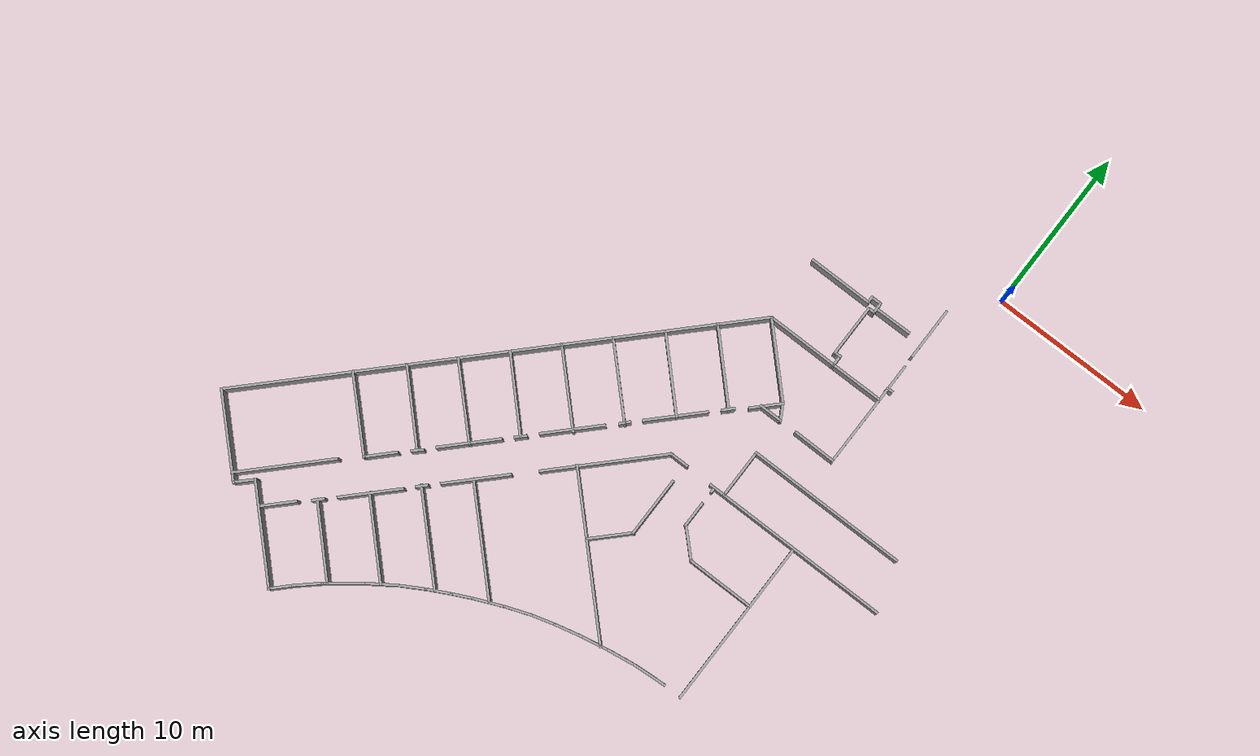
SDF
<sdf version="1.7">
 <model name="TI_1">
  <pose>-0.810812 4.85868 0 0 -0 0</pose>
  <link name="Wall_401">
   <collision name="Wall_401_Collision">
    <geometry><box><size>4 0.15 2.5</size></box></geometry>
    <pose>0 0 1.25 0 -0 0</pose>
   </collision>
   <visual name="Wall_401_Visual">
    <pose>0 0 1.25 0 -0 0</pose>
    <geometry><box><size>4 0.15 2.5</size></box></geometry>
    <material>
     <script><uri>file://media/materials/scripts/gazebo.material</uri><name>Gazebo/Grey</name></script>
     <ambient>1 1 1 1</ambient>
    </material>
    <meta><layer>0</layer></meta>
   </visual>
   <pose>-6.98592 -9.68957 0 0 -0 0</pose>
  </link>
  <link name="Wall_402">
   <collision name="Wall_402_Collision">
    <geometry><box><size>0.5 0.15 2.5</size></box></geometry>
    <pose>0 0 1.25 0 -0 0</pose>
   </collision>
   <visual name="Wall_402_Visual">
    <pose>0 0 1.25 0 -0 0</pose>
    <geometry><box><size>0.5 0.15 2.5</size></box></geometry>
    <material>
     <script><uri>file://media/materials/scripts/gazebo.material</uri><name>Gazebo/Grey</name></script>
     <ambient>1 1 1 1</ambient>
    </material>
    <meta><layer>0</layer></meta>
   </visual>
   <pose>-5.06092 -9.51457 0 0 -0 1.5708</pose>
  </link>
  <link name="Wall_403">
   <collision name="Wall_403_Collision">
    <geometry><box><size>0.75 0.15 2.5</size></box></geometry>
    <pose>0 0 1.25 0 -0 0</pose>
   </collision>
   <visual name="Wall_403_Visual">
    <pose>0 0 1.25 0 -0 0</pose>
    <geometry><box><size>0.75 0.15 2.5</size></box></geometry>
    <material>
     <script><uri>file://media/materials/scripts/gazebo.material</uri><name>Gazebo/Grey</name></script>
     <ambient>1 1 1 1</ambient>
    </material>
    <meta><layer>0</layer></meta>
   </visual>
   <pose>-4.76092 -9.33957 0 0 -0 0</pose>
  </link>
  <link name="Wall_404">
   <collision name="Wall_404_Collision">
    <geometry><box><size>0.75 0.15 2.5</size></box></geometry>
    <pose>0 0 1.25 0 -0 0</pose>
   </collision>
   <visual name="Wall_404_Visual">
    <pose>0 0 1.25 0 -0 0</pose>
    <geometry><box><size>0.75 0.15 2.5</size></box></geometry>
    <material>
     <script><uri>file://media/materials/scripts/gazebo.material</uri><name>Gazebo/Grey</name></script>
     <ambient>1 1 1 1</ambient>
    </material>
    <meta><layer>0</layer></meta>
   </visual>
   <pose>-4.46092 -9.63957 0 0 -0 -1.5708</pose>
  </link>
  <link name="Wall_405">
   <collision name="Wall_405_Collision">
    <geometry><box><size>0.5 0.15 2.5</size></box></geometry>
    <pose>0 0 1.25 0 -0 0</pose>
   </collision>
   <visual name="Wall_405_Visual">
    <pose>0 0 1.25 0 -0 0</pose>
    <geometry><box><size>0.5 0.15 2.5</size></box></geometry>
    <material>
     <script><uri>file://media/materials/scripts/gazebo.material</uri><name>Gazebo/Grey</name></script>
     <ambient>1 1 1 1</ambient>
    </material>
    <meta><layer>0</layer></meta>
   </visual>
   <pose>-4.63592 -9.93957 0 0 -0 3.14159</pose>
  </link>
  <link name="Wall_408">
   <collision name="Wall_408_Collision">
    <geometry><box><size>2.34167 0.15 2.5</size></box></geometry>
    <pose>0 0 1.25 0 -0 0</pose>
   </collision>
   <visual name="Wall_408_Visual">
    <pose>0 0 1.25 0 -0 0</pose>
    <geometry><box><size>2.34167 0.15 2.5</size></box></geometry>
    <material>
     <script><uri>file://media/materials/scripts/gazebo.material</uri><name>Gazebo/Grey</name></script>
     <ambient>1 1 1 1</ambient>
    </material>
    <meta><layer>0</layer></meta>
   </visual>
   <pose>-3.33184 -9.6756 0 0 -0 -3.12808</pose>
  </link>
  <link name="Wall_421">
   <collision name="Wall_421_Collision">
    <geometry><box><size>3.25 0.15 2.5</size></box></geometry>
    <pose>0 0 1.25 0 -0 0</pose>
   </collision>
   <visual name="Wall_421_Visual">
    <pose>0 0 1.25 0 -0 0</pose>
    <geometry><box><size>3.25 0.15 2.5</size></box></geometry>
    <material>
     <script><uri>file://media/materials/scripts/gazebo.material</uri><name>Gazebo/Grey</name></script>
     <ambient>1 1 1 1</ambient>
    </material>
    <meta><layer>0</layer></meta>
   </visual>
   <pose>-1.27363 -9.01933 0 0 -0 -1.5708</pose>
  </link>
  <link name="Wall_432">
   <collision name="Wall_432_Collision">
    <geometry><box><size>3.25 0.15 2.5</size></box></geometry>
    <pose>0 0 1.25 0 -0 0</pose>
   </collision>
   <visual name="Wall_432_Visual">
    <pose>0 0 1.25 0 -0 0</pose>
    <geometry><box><size>3.25 0.15 2.5</size></box></geometry>
    <material>
     <script><uri>file://media/materials/scripts/gazebo.material</uri><name>Gazebo/Grey</name></script>
     <ambient>1 1 1 1</ambient>
    </material>
    <meta><layer>0</layer></meta>
   </visual>
   <pose>-4.81092 -11.4896 0 0 -0 -1.5708</pose>
  </link>
  <link name="Wall_433">
   <collision name="Wall_433_Collision">
    <geometry><box><size>0.5 0.15 2.5</size></box></geometry>
    <pose>0 0 1.25 0 -0 0</pose>
   </collision>
   <visual name="Wall_433_Visual">
    <pose>0 0 1.25 0 -0 0</pose>
    <geometry><box><size>0.5 0.15 2.5</size></box></geometry>
    <material>
     <script><uri>file://media/materials/scripts/gazebo.material</uri><name>Gazebo/Grey</name></script>
     <ambient>1 1 1 1</ambient>
    </material>
    <meta><layer>0</layer></meta>
   </visual>
   <pose>-4.63592 -13.0396 0 0 -0 0</pose>
  </link>
  <link name="Wall_434">
   <collision name="Wall_434_Collision">
    <geometry><box><size>0.75 0.15 2.5</size></box></geometry>
    <pose>0 0 1.25 0 -0 0</pose>
   </collision>
   <visual name="Wall_434_Visual">
    <pose>0 0 1.25 0 -0 0</pose>
    <geometry><box><size>0.75 0.15 2.5</size></box></geometry>
    <material>
     <script><uri>file://media/materials/scripts/gazebo.material</uri><name>Gazebo/Grey</name></script>
     <ambient>1 1 1 1</ambient>
    </material>
    <meta><layer>0</layer></meta>
   </visual>
   <pose>-4.46092 -13.3396 0 0 -0 -1.5708</pose>
  </link>
  <link name="Wall_435">
   <collision name="Wall_435_Collision">
    <geometry><box><size>3.36116 0.15 2.5</size></box></geometry>
    <pose>0 0 1.25 0 -0 0</pose>
   </collision>
   <visual name="Wall_435_Visual">
    <pose>0 0 1.25 0 -0 0</pose>
    <geometry><box><size>3.36116 0.15 2.5</size></box></geometry>
    <material>
     <script><uri>file://media/materials/scripts/gazebo.material</uri><name>Gazebo/Grey</name></script>
     <ambient>1 1 1 1</ambient>
    </material>
    <meta><layer>0</layer></meta>
   </visual>
   <pose>-2.85541 -13.6315 0 0 -0 0.005054</pose>
  </link>
  <link name="Wall_436">
   <collision name="Wall_436_Collision">
    <geometry><box><size>2.4394 0.15 2.5</size></box></geometry>
    <pose>0 0 1.25 0 -0 0</pose>
   </collision>
   <visual name="Wall_436_Visual">
    <pose>0 0 1.25 0 -0 0</pose>
    <geometry><box><size>2.4394 0.15 2.5</size></box></geometry>
    <material>
     <script><uri>file://media/materials/scripts/gazebo.material</uri><name>Gazebo/Grey</name></script>
     <ambient>1 1 1 1</ambient>
    </material>
    <meta><layer>0</layer></meta>
   </visual>
   <pose>-1.24991 -12.4786 0 0 -0 1.5708</pose>
  </link>
  <link name="Wall_438">
   <collision name="Wall_438_Collision">
    <geometry><box><size>0.445775 0.15 2.5</size></box></geometry>
    <pose>0 0 1.25 0 -0 0</pose>
   </collision>
   <visual name="Wall_438_Visual">
    <pose>0 0 1.25 0 -0 0</pose>
    <geometry><box><size>0.445775 0.15 2.5</size></box></geometry>
    <material>
     <script><uri>file://media/materials/scripts/gazebo.material</uri><name>Gazebo/Grey</name></script>
     <ambient>1 1 1 1</ambient>
    </material>
    <meta><layer>0</layer></meta>
   </visual>
   <pose>-1.13175 -12.8405 0 0 -0 0</pose>
  </link>
  <link name="Wall_457">
   <collision name="Wall_457_Collision">
    <geometry><box><size>4.43562 0.15 2.5</size></box></geometry>
    <pose>0 0 1.25 0 -0 0</pose>
   </collision>
   <visual name="Wall_457_Visual">
    <pose>0 0 1.25 0 -0 0</pose>
    <geometry><box><size>4.43562 0.15 2.5</size></box></geometry>
    <material>
     <script><uri>file://media/materials/scripts/gazebo.material</uri><name>Gazebo/Grey</name></script>
     <ambient>1 1 1 1</ambient>
    </material>
    <meta><layer>0</layer></meta>
   </visual>
   <pose>-1.25703 -15.7661 0 0 -0 -1.57412</pose>
  </link>
  <link name="Wall_458">
   <collision name="Wall_458_Collision">
    <geometry><box><size>2.71492 0.15 2.5</size></box></geometry>
    <pose>0 0 1.25 0 -0 0</pose>
   </collision>
   <visual name="Wall_458_Visual">
    <pose>0 0 1.25 0 -0 0</pose>
    <geometry><box><size>2.71492 0.15 2.5</size></box></geometry>
    <material>
     <script><uri>file://media/materials/scripts/gazebo.material</uri><name>Gazebo/Grey</name></script>
     <ambient>1 1 1 1</ambient>
    </material>
    <meta><layer>0</layer></meta>
   </visual>
   <pose>-2.54659 -17.9004 0 0 -0 3.13497</pose>
  </link>
  <link name="Wall_460">
   <collision name="Wall_460_Collision">
    <geometry><box><size>4.5 0.15 2.5</size></box></geometry>
    <pose>0 0 1.25 0 -0 0</pose>
   </collision>
   <visual name="Wall_460_Visual">
    <pose>0 0 1.25 0 -0 0</pose>
    <geometry><box><size>4.5 0.15 2.5</size></box></geometry>
    <material>
     <script><uri>file://media/materials/scripts/gazebo.material</uri><name>Gazebo/Grey</name></script>
     <ambient>1 1 1 1</ambient>
    </material>
    <meta><layer>0</layer></meta>
   </visual>
   <pose>-6.63592 -13.6396 0 0 -0 3.14159</pose>
  </link>
  <link name="Wall_461">
   <collision name="Wall_461_Collision">
    <geometry><box><size>5 0.15 2.5</size></box></geometry>
    <pose>0 0 1.25 0 -0 0</pose>
   </collision>
   <visual name="Wall_461_Visual">
    <pose>0 0 1.25 0 -0 0</pose>
    <geometry><box><size>5 0.15 2.5</size></box></geometry>
    <material>
     <script><uri>file://media/materials/scripts/gazebo.material</uri><name>Gazebo/Grey</name></script>
     <ambient>1 1 1 1</ambient>
    </material>
    <meta><layer>0</layer></meta>
   </visual>
   <pose>-7.09618 -15.3543 0 0 -0 -0.785398</pose>
  </link>
  <link name="Wall_462">
   <collision name="Wall_462_Collision">
    <geometry><box><size>2 0.15 2.5</size></box></geometry>
    <pose>0 0 1.25 0 -0 0</pose>
   </collision>
   <visual name="Wall_462_Visual">
    <pose>0 0 1.25 0 -0 0</pose>
    <geometry><box><size>2 0.15 2.5</size></box></geometry>
    <material>
     <script><uri>file://media/materials/scripts/gazebo.material</uri><name>Gazebo/Grey</name></script>
     <ambient>1 1 1 1</ambient>
    </material>
    <meta><layer>0</layer></meta>
   </visual>
   <pose>-6.03552 -17.7231 0 0 -0 -2.35619</pose>
  </link>
  <link name="Wall_464">
   <collision name="Wall_464_Collision">
    <geometry><box><size>1.5 0.15 2.5</size></box></geometry>
    <pose>0 0 1.25 0 -0 0</pose>
   </collision>
   <visual name="Wall_464_Visual">
    <pose>0 0 1.25 0 -0 0</pose>
    <geometry><box><size>1.5 0.15 2.5</size></box></geometry>
    <material>
     <script><uri>file://media/materials/scripts/gazebo.material</uri><name>Gazebo/Grey</name></script>
     <ambient>1 1 1 1</ambient>
    </material>
    <meta><layer>0</layer></meta>
   </visual>
   <pose>-5.5925 -17.9016 0 0 -0 3.14159</pose>
  </link>
  <link name="Wall_466">
   <collision name="Wall_466_Collision">
    <geometry><box><size>1.10308 0.15 2.5</size></box></geometry>
    <pose>0 0 1.25 0 -0 0</pose>
   </collision>
   <visual name="Wall_466_Visual">
    <pose>0 0 1.25 0 -0 0</pose>
    <geometry><box><size>1.10308 0.15 2.5</size></box></geometry>
    <material>
     <script><uri>file://media/materials/scripts/gazebo.material</uri><name>Gazebo/Grey</name></script>
     <ambient>1 1 1 1</ambient>
    </material>
    <meta><layer>0</layer></meta>
   </visual>
   <pose>-5.14948 -17.4853 0 0 -0 -1.06239</pose>
  </link>
  <link name="Wall_468">
   <collision name="Wall_468_Collision">
    <geometry><box><size>31 0.15 2.5</size></box></geometry>
    <pose>0 0 1.25 0 -0 0</pose>
   </collision>
   <visual name="Wall_468_Visual">
    <pose>0 0 1.25 0 -0 0</pose>
    <geometry><box><size>31 0.15 2.5</size></box></geometry>
    <material>
     <script><uri>file://media/materials/scripts/gazebo.material</uri><name>Gazebo/Grey</name></script>
     <ambient>1 1 1 1</ambient>
    </material>
    <meta><layer>0</layer></meta>
   </visual>
   <pose>-19.718 -24.5467 0 0 -0 -2.35619</pose>
  </link>
  <link name="Wall_471">
   <collision name="Wall_471_Collision">
    <geometry><box><size>5.38169 0.15 2.5</size></box></geometry>
    <pose>0 0 1.25 0 -0 0</pose>
   </collision>
   <visual name="Wall_471_Visual">
    <pose>0 0 1.25 0 -0 0</pose>
    <geometry><box><size>5.38169 0.15 2.5</size></box></geometry>
    <material>
     <script><uri>file://media/materials/scripts/gazebo.material</uri><name>Gazebo/Grey</name></script>
     <ambient>1 1 1 1</ambient>
    </material>
    <meta><layer>0</layer></meta>
   </visual>
   <pose>-28.7678 -37.2957 0 0 -0 -0.781213</pose>
  </link>
  <link name="Wall_472">
   <collision name="Wall_472_Collision">
    <geometry><box><size>1.37226 0.15 2.5</size></box></geometry>
    <pose>0 0 1.25 0 -0 0</pose>
   </collision>
   <visual name="Wall_472_Visual">
    <pose>0 0 1.25 0 -0 0</pose>
    <geometry><box><size>1.37226 0.15 2.5</size></box></geometry>
    <material>
     <script><uri>file://media/materials/scripts/gazebo.material</uri><name>Gazebo/Grey</name></script>
     <ambient>1 1 1 1</ambient>
    </material>
    <meta><layer>0</layer></meta>
   </visual>
   <pose>-26.4734 -38.7104 0 0 -0 0.774288</pose>
  </link>
  <link name="Wall_474">
   <collision name="Wall_474_Collision">
    <geometry><box><size>6.25 0.15 2.5</size></box></geometry>
    <pose>0 0 1.25 0 -0 0</pose>
   </collision>
   <visual name="Wall_474_Visual">
    <pose>0 0 1.25 0 -0 0</pose>
    <geometry><box><size>6.25 0.15 2.5</size></box></geometry>
    <material>
     <script><uri>file://media/materials/scripts/gazebo.material</uri><name>Gazebo/Grey</name></script>
     <ambient>1 1 1 1</ambient>
    </material>
    <meta><layer>0</layer></meta>
   </visual>
   <pose>-23.8799 -40.4397 0 0 -0 -0.785398</pose>
  </link>
  <link name="Wall_475">
   <collision name="Wall_475_Collision">
    <geometry><box><size>1.5 0.15 2.5</size></box></geometry>
    <pose>0 0 1.25 0 -0 0</pose>
   </collision>
   <visual name="Wall_475_Visual">
    <pose>0 0 1.25 0 -0 0</pose>
    <geometry><box><size>1.5 0.15 2.5</size></box></geometry>
    <material>
     <script><uri>file://media/materials/scripts/gazebo.material</uri><name>Gazebo/Grey</name></script>
     <ambient>1 1 1 1</ambient>
    </material>
    <meta><layer>0</layer></meta>
   </visual>
   <pose>-21.2459 -42.1191 0 0 -0 0.785398</pose>
  </link>
  <link name="Wall_476">
   <collision name="Wall_476_Collision">
    <geometry><box><size>1.78687 0.15 2.5</size></box></geometry>
    <pose>0 0 1.25 0 -0 0</pose>
   </collision>
   <visual name="Wall_476_Visual">
    <pose>0 0 1.25 0 -0 0</pose>
    <geometry><box><size>1.78687 0.15 2.5</size></box></geometry>
    <material>
     <script><uri>file://media/materials/scripts/gazebo.material</uri><name>Gazebo/Grey</name></script>
     <ambient>1 1 1 1</ambient>
    </material>
    <meta><layer>0</layer></meta>
   </visual>
   <pose>-20.1601 -41.0945 0 0 -0 0.732505</pose>
  </link>
  <link name="Wall_477">
   <collision name="Wall_477_Collision">
    <geometry><box><size>2.57816 0.15 2.5</size></box></geometry>
    <pose>0 0 1.25 0 -0 0</pose>
   </collision>
   <visual name="Wall_477_Visual">
    <pose>0 0 1.25 0 -0 0</pose>
    <geometry><box><size>2.57816 0.15 2.5</size></box></geometry>
    <material>
     <script><uri>file://media/materials/scripts/gazebo.material</uri><name>Gazebo/Grey</name></script>
     <ambient>1 1 1 1</ambient>
    </material>
    <meta><layer>0</layer></meta>
   </visual>
   <pose>-18.5864 -39.8106 0 0 -0 0.651869</pose>
  </link>
  <link name="Wall_478">
   <collision name="Wall_478_Collision">
    <geometry><box><size>1.88648 0.15 2.5</size></box></geometry>
    <pose>0 0 1.25 0 -0 0</pose>
   </collision>
   <visual name="Wall_478_Visual">
    <pose>0 0 1.25 0 -0 0</pose>
    <geometry><box><size>1.88648 0.15 2.5</size></box></geometry>
    <material>
     <script><uri>file://media/materials/scripts/gazebo.material</uri><name>Gazebo/Grey</name></script>
     <ambient>1 1 1 1</ambient>
    </material>
    <meta><layer>0</layer></meta>
   </visual>
   <pose>-16.9038 -38.5852 0 0 -0 0.598144</pose>
  </link>
  <link name="Wall_479">
   <collision name="Wall_479_Collision">
    <geometry><box><size>1.73143 0.15 2.5</size></box></geometry>
    <pose>0 0 1.25 0 -0 0</pose>
   </collision>
   <visual name="Wall_479_Visual">
    <pose>0 0 1.25 0 -0 0</pose>
    <geometry><box><size>1.73143 0.15 2.5</size></box></geometry>
    <material>
     <script><uri>file://media/materials/scripts/gazebo.material</uri><name>Gazebo/Grey</name></script>
     <ambient>1 1 1 1</ambient>
    </material>
    <meta><layer>0</layer></meta>
   </visual>
   <pose>-15.5006 -37.7026 0 0 -0 0.521138</pose>
  </link>
  <link name="Wall_480">
   <collision name="Wall_480_Collision">
    <geometry><box><size>1.59262 0.15 2.5</size></box></geometry>
    <pose>0 0 1.25 0 -0 0</pose>
   </collision>
   <visual name="Wall_480_Visual">
    <pose>0 0 1.25 0 -0 0</pose>
    <geometry><box><size>1.59262 0.15 2.5</size></box></geometry>
    <material>
     <script><uri>file://media/materials/scripts/gazebo.material</uri><name>Gazebo/Grey</name></script>
     <ambient>1 1 1 1</ambient>
    </material>
    <meta><layer>0</layer></meta>
   </visual>
   <pose>-14.1735 -36.9787 0 0 -0 0.475458</pose>
  </link>
  <link name="Wall_482">
   <collision name="Wall_482_Collision">
    <geometry><box><size>1.3315 0.15 2.5</size></box></geometry>
    <pose>0 0 1.25 0 -0 0</pose>
   </collision>
   <visual name="Wall_482_Visual">
    <pose>0 0 1.25 0 -0 0</pose>
    <geometry><box><size>1.3315 0.15 2.5</size></box></geometry>
    <material>
     <script><uri>file://media/materials/scripts/gazebo.material</uri><name>Gazebo/Grey</name></script>
     <ambient>1 1 1 1</ambient>
    </material>
    <meta><layer>0</layer></meta>
   </visual>
   <pose>-12.9988 -36.3946 0 0 -0 0.444419</pose>
  </link>
  <link name="Wall_483">
   <collision name="Wall_483_Collision">
    <geometry><box><size>1.98756 0.15 2.5</size></box></geometry>
    <pose>0 0 1.25 0 -0 0</pose>
   </collision>
   <visual name="Wall_483_Visual">
    <pose>0 0 1.25 0 -0 0</pose>
    <geometry><box><size>1.98756 0.15 2.5</size></box></geometry>
    <material>
     <script><uri>file://media/materials/scripts/gazebo.material</uri><name>Gazebo/Grey</name></script>
     <ambient>1 1 1 1</ambient>
    </material>
    <meta><layer>0</layer></meta>
   </visual>
   <pose>-11.621 -35.7787 0 0 -0 0.404892</pose>
  </link>
  <link name="Wall_484">
   <collision name="Wall_484_Collision">
    <geometry><box><size>1.70475 0.15 2.5</size></box></geometry>
    <pose>0 0 1.25 0 -0 0</pose>
   </collision>
   <visual name="Wall_484_Visual">
    <pose>0 0 1.25 0 -0 0</pose>
    <geometry><box><size>1.70475 0.15 2.5</size></box></geometry>
    <material>
     <script><uri>file://media/materials/scripts/gazebo.material</uri><name>Gazebo/Grey</name></script>
     <ambient>1 1 1 1</ambient>
    </material>
    <meta><layer>0</layer></meta>
   </visual>
   <pose>-10.0463 -35.1501 0 0 -0 0.350167</pose>
  </link>
  <link name="Wall_485">
   <collision name="Wall_485_Collision">
    <geometry><box><size>1.5891 0.15 2.5</size></box></geometry>
    <pose>0 0 1.25 0 -0 0</pose>
   </collision>
   <visual name="Wall_485_Visual">
    <pose>0 0 1.25 0 -0 0</pose>
    <geometry><box><size>1.5891 0.15 2.5</size></box></geometry>
    <material>
     <script><uri>file://media/materials/scripts/gazebo.material</uri><name>Gazebo/Grey</name></script>
     <ambient>1 1 1 1</ambient>
    </material>
    <meta><layer>0</layer></meta>
   </visual>
   <pose>-8.62399 -34.6865 0 0 -0 0.277088</pose>
  </link>
  <link name="Wall_486">
   <collision name="Wall_486_Collision">
    <geometry><box><size>1.74246 0.15 2.5</size></box></geometry>
    <pose>0 0 1.25 0 -0 0</pose>
   </collision>
   <visual name="Wall_486_Visual">
    <pose>0 0 1.25 0 -0 0</pose>
    <geometry><box><size>1.74246 0.15 2.5</size></box></geometry>
    <material>
     <script><uri>file://media/materials/scripts/gazebo.material</uri><name>Gazebo/Grey</name></script>
     <ambient>1 1 1 1</ambient>
    </material>
    <meta><layer>0</layer></meta>
   </visual>
   <pose>-7.15724 -34.3056 0 0 -0 0.233374</pose>
  </link>
  <link name="Wall_487">
   <collision name="Wall_487_Collision">
    <geometry><box><size>1.82878 0.15 2.5</size></box></geometry>
    <pose>0 0 1.25 0 -0 0</pose>
   </collision>
   <visual name="Wall_487_Visual">
    <pose>0 0 1.25 0 -0 0</pose>
    <geometry><box><size>1.82878 0.15 2.5</size></box></geometry>
    <material>
     <script><uri>file://media/materials/scripts/gazebo.material</uri><name>Gazebo/Grey</name></script>
     <ambient>1 1 1 1</ambient>
    </material>
    <meta><layer>0</layer></meta>
   </visual>
   <pose>-5.55716 -33.969 0 0 -0 0.18256</pose>
  </link>
  <link name="Wall_488">
   <collision name="Wall_488_Collision">
    <geometry><box><size>1.83099 0.15 2.5</size></box></geometry>
    <pose>0 0 1.25 0 -0 0</pose>
   </collision>
   <visual name="Wall_488_Visual">
    <pose>0 0 1.25 0 -0 0</pose>
    <geometry><box><size>1.83099 0.15 2.5</size></box></geometry>
    <material>
     <script><uri>file://media/materials/scripts/gazebo.material</uri><name>Gazebo/Grey</name></script>
     <ambient>1 1 1 1</ambient>
    </material>
    <meta><layer>0</layer></meta>
   </visual>
   <pose>-3.89992 -33.696 0 0 -0 0.144034</pose>
  </link>
  <link name="Wall_489">
   <collision name="Wall_489_Collision">
    <geometry><box><size>2.12245 0.15 2.5</size></box></geometry>
    <pose>0 0 1.25 0 -0 0</pose>
   </collision>
   <visual name="Wall_489_Visual">
    <pose>0 0 1.25 0 -0 0</pose>
    <geometry><box><size>2.12245 0.15 2.5</size></box></geometry>
    <material>
     <script><uri>file://media/materials/scripts/gazebo.material</uri><name>Gazebo/Grey</name></script>
     <ambient>1 1 1 1</ambient>
    </material>
    <meta><layer>0</layer></meta>
   </visual>
   <pose>-2.08395 -33.5119 0 0 -0 0.064427</pose>
  </link>
  <link name="Wall_582">
   <collision name="Wall_582_Collision">
    <geometry><box><size>11.75 0.15 2.5</size></box></geometry>
    <pose>0 0 1.25 0 -0 0</pose>
   </collision>
   <visual name="Wall_582_Visual">
    <pose>0 0 1.25 0 -0 0</pose>
    <geometry><box><size>11.75 0.15 2.5</size></box></geometry>
    <material>
     <script><uri>file://media/materials/scripts/gazebo.material</uri><name>Gazebo/Grey</name></script>
     <ambient>1 1 1 1</ambient>
    </material>
    <meta><layer>0</layer></meta>
   </visual>
   <pose>0.000773 -23.1005 0 0 -0 3.14159</pose>
  </link>
  <link name="Wall_584">
   <collision name="Wall_584_Collision">
    <geometry><box><size>3.09219 0.15 2.5</size></box></geometry>
    <pose>0 0 1.25 0 -0 0</pose>
   </collision>
   <visual name="Wall_584_Visual">
    <pose>0 0 1.25 0 -0 0</pose>
    <geometry><box><size>3.09219 0.15 2.5</size></box></geometry>
    <material>
     <script><uri>file://media/materials/scripts/gazebo.material</uri><name>Gazebo/Grey</name></script>
     <ambient>1 1 1 1</ambient>
    </material>
    <meta><layer>0</layer></meta>
   </visual>
   <pose>-4.88201 -21.6168 0 0 -0 1.5708</pose>
  </link>
  <link name="Wall_585">
   <collision name="Wall_585_Collision">
    <geometry><box><size>9.94887 0.15 2.5</size></box></geometry>
    <pose>0 0 1.25 0 -0 0</pose>
   </collision>
   <visual name="Wall_585_Visual">
    <pose>0 0 1.25 0 -0 0</pose>
    <geometry><box><size>9.94887 0.15 2.5</size></box></geometry>
    <material>
     <script><uri>file://media/materials/scripts/gazebo.material</uri><name>Gazebo/Grey</name></script>
     <ambient>1 1 1 1</ambient>
    </material>
    <meta><layer>0</layer></meta>
   </visual>
   <pose>0.017421 -20.1457 0 0 -0 0</pose>
  </link>
  <link name="Wall_589">
   <collision name="Wall_589_Collision">
    <geometry><box><size>0.44043 0.15 2.5</size></box></geometry>
    <pose>0 0 1.25 0 -0 0</pose>
   </collision>
   <visual name="Wall_589_Visual">
    <pose>0 0 1.25 0 -0 0</pose>
    <geometry><box><size>0.44043 0.15 2.5</size></box></geometry>
    <material>
     <script><uri>file://media/materials/scripts/gazebo.material</uri><name>Gazebo/Grey</name></script>
     <ambient>1 1 1 1</ambient>
    </material>
    <meta><layer>0</layer></meta>
   </visual>
   <pose>-5.54495 -23.2331 0 0 -0 1.61425</pose>
  </link>
  <link name="Wall_591">
   <collision name="Wall_591_Collision">
    <geometry><box><size>1.64009 0.15 2.5</size></box></geometry>
    <pose>0 0 1.25 0 -0 0</pose>
   </collision>
   <visual name="Wall_591_Visual">
    <pose>0 0 1.25 0 -0 0</pose>
    <geometry><box><size>1.64009 0.15 2.5</size></box></geometry>
    <material>
     <script><uri>file://media/materials/scripts/gazebo.material</uri><name>Gazebo/Grey</name></script>
     <ambient>1 1 1 1</ambient>
    </material>
    <meta><layer>0</layer></meta>
   </visual>
   <pose>-5.55126 -24.9568 0 0 -0 -1.5708</pose>
  </link>
  <link name="Wall_592">
   <collision name="Wall_592_Collision">
    <geometry><box><size>2.15919 0.15 2.5</size></box></geometry>
    <pose>0 0 1.25 0 -0 0</pose>
   </collision>
   <visual name="Wall_592_Visual">
    <pose>0 0 1.25 0 -0 0</pose>
    <geometry><box><size>2.15919 0.15 2.5</size></box></geometry>
    <material>
     <script><uri>file://media/materials/scripts/gazebo.material</uri><name>Gazebo/Grey</name></script>
     <ambient>1 1 1 1</ambient>
    </material>
    <meta><layer>0</layer></meta>
   </visual>
   <pose>-4.8315 -26.4026 0 0 -0 -0.772066</pose>
  </link>
  <link name="Wall_593">
   <collision name="Wall_593_Collision">
    <geometry><box><size>4.27916 0.15 2.5</size></box></geometry>
    <pose>0 0 1.25 0 -0 0</pose>
   </collision>
   <visual name="Wall_593_Visual">
    <pose>0 0 1.25 0 -0 0</pose>
    <geometry><box><size>4.27916 0.15 2.5</size></box></geometry>
    <material>
     <script><uri>file://media/materials/scripts/gazebo.material</uri><name>Gazebo/Grey</name></script>
     <ambient>1 1 1 1</ambient>
    </material>
    <meta><layer>0</layer></meta>
   </visual>
   <pose>-2.04716 -27.1098 0 0 -0 -0.003058</pose>
  </link>
  <link name="Wall_594">
   <collision name="Wall_594_Collision">
    <geometry><box><size>4.12771 0.15 2.5</size></box></geometry>
    <pose>0 0 1.25 0 -0 0</pose>
   </collision>
   <visual name="Wall_594_Visual">
    <pose>0 0 1.25 0 -0 0</pose>
    <geometry><box><size>4.12771 0.15 2.5</size></box></geometry>
    <material>
     <script><uri>file://media/materials/scripts/gazebo.material</uri><name>Gazebo/Grey</name></script>
     <ambient>1 1 1 1</ambient>
    </material>
    <meta><layer>0</layer></meta>
   </visual>
   <pose>0.017421 -25.1272 0 0 -0 1.5708</pose>
  </link>
  <link name="Wall_596">
   <collision name="Wall_596_Collision">
    <geometry><box><size>6.5 0.15 2.5</size></box></geometry>
    <pose>0 0 1.25 0 -0 0</pose>
   </collision>
   <visual name="Wall_596_Visual">
    <pose>0 0 1.25 0 -0 0</pose>
    <geometry><box><size>6.5 0.15 2.5</size></box></geometry>
    <material>
     <script><uri>file://media/materials/scripts/gazebo.material</uri><name>Gazebo/Grey</name></script>
     <ambient>1 1 1 1</ambient>
    </material>
    <meta><layer>0</layer></meta>
   </visual>
   <pose>0.017421 -30.2911 0 0 -0 -1.5708</pose>
  </link>
  <link name="Wall_598">
   <collision name="Wall_598_Collision">
    <geometry><box><size>4.94431 0.15 2.5</size></box></geometry>
    <pose>0 0 1.25 0 -0 0</pose>
   </collision>
   <visual name="Wall_598_Visual">
    <pose>0 0 1.25 0 -0 0</pose>
    <geometry><box><size>4.94431 0.15 2.5</size></box></geometry>
    <material>
     <script><uri>file://media/materials/scripts/gazebo.material</uri><name>Gazebo/Grey</name></script>
     <ambient>1 1 1 1</ambient>
    </material>
    <meta><layer>0</layer></meta>
   </visual>
   <pose>-9.26173 -17.4674 0 0 -0 -0.790324</pose>
  </link>
  <link name="Wall_600">
   <collision name="Wall_600_Collision">
    <geometry><box><size>0.799575 0.15 2.5</size></box></geometry>
    <pose>0 0 1.25 0 -0 0</pose>
   </collision>
   <visual name="Wall_600_Visual">
    <pose>0 0 1.25 0 -0 0</pose>
    <geometry><box><size>0.799575 0.15 2.5</size></box></geometry>
    <material>
     <script><uri>file://media/materials/scripts/gazebo.material</uri><name>Gazebo/Grey</name></script>
     <ambient>1 1 1 1</ambient>
    </material>
    <meta><layer>0</layer></meta>
   </visual>
   <pose>-7.60011 -19.1708 0 0 -0 -2.33801</pose>
  </link>
  <link name="Wall_602">
   <collision name="Wall_602_Collision">
    <geometry><box><size>3.75 0.15 2.5</size></box></geometry>
    <pose>0 0 1.25 0 -0 0</pose>
   </collision>
   <visual name="Wall_602_Visual">
    <pose>0 0 1.25 0 -0 0</pose>
    <geometry><box><size>3.75 0.15 2.5</size></box></geometry>
    <material>
     <script><uri>file://media/materials/scripts/gazebo.material</uri><name>Gazebo/Grey</name></script>
     <ambient>1 1 1 1</ambient>
    </material>
    <meta><layer>0</layer></meta>
   </visual>
   <pose>-9.6861 -21.2575 0 0 -0 -2.35619</pose>
  </link>
  <link name="Wall_604">
   <collision name="Wall_604_Collision">
    <geometry><box><size>4.90422 0.15 2.5</size></box></geometry>
    <pose>0 0 1.25 0 -0 0</pose>
   </collision>
   <visual name="Wall_604_Visual">
    <pose>0 0 1.25 0 -0 0</pose>
    <geometry><box><size>4.90422 0.15 2.5</size></box></geometry>
    <material>
     <script><uri>file://media/materials/scripts/gazebo.material</uri><name>Gazebo/Grey</name></script>
     <ambient>1 1 1 1</ambient>
    </material>
    <meta><layer>0</layer></meta>
   </visual>
   <pose>-11.3249 -19.5491 0 0 -0 -0.787558</pose>
  </link>
  <link name="Wall_606">
   <collision name="Wall_606_Collision">
    <geometry><box><size>4.94529 0.15 2.5</size></box></geometry>
    <pose>0 0 1.25 0 -0 0</pose>
   </collision>
   <visual name="Wall_606_Visual">
    <pose>0 0 1.25 0 -0 0</pose>
    <geometry><box><size>4.94529 0.15 2.5</size></box></geometry>
    <material>
     <script><uri>file://media/materials/scripts/gazebo.material</uri><name>Gazebo/Grey</name></script>
     <ambient>1 1 1 1</ambient>
    </material>
    <meta><layer>0</layer></meta>
   </visual>
   <pose>-13.3942 -21.6184 0 0 -0 -0.783257</pose>
  </link>
  <link name="Wall_608">
   <collision name="Wall_608_Collision">
    <geometry><box><size>0.725389 0.15 2.5</size></box></geometry>
    <pose>0 0 1.25 0 -0 0</pose>
   </collision>
   <visual name="Wall_608_Visual">
    <pose>0 0 1.25 0 -0 0</pose>
    <geometry><box><size>0.725389 0.15 2.5</size></box></geometry>
    <material>
     <script><uri>file://media/materials/scripts/gazebo.material</uri><name>Gazebo/Grey</name></script>
     <ambient>1 1 1 1</ambient>
    </material>
    <meta><layer>0</layer></meta>
   </visual>
   <pose>-11.7024 -23.2738 0 0 -0 -2.3205</pose>
  </link>
  <link name="Wall_610">
   <collision name="Wall_610_Collision">
    <geometry><box><size>5 0.15 2.5</size></box></geometry>
    <pose>0 0 1.25 0 -0 0</pose>
   </collision>
   <visual name="Wall_610_Visual">
    <pose>0 0 1.25 0 -0 0</pose>
    <geometry><box><size>5 0.15 2.5</size></box></geometry>
    <material>
     <script><uri>file://media/materials/scripts/gazebo.material</uri><name>Gazebo/Grey</name></script>
     <ambient>1 1 1 1</ambient>
    </material>
    <meta><layer>0</layer></meta>
   </visual>
   <pose>-15.426 -23.6744 0 0 -0 -0.785398</pose>
  </link>
  <link name="Wall_612">
   <collision name="Wall_612_Collision">
    <geometry><box><size>3.75 0.15 2.5</size></box></geometry>
    <pose>0 0 1.25 0 -0 0</pose>
   </collision>
   <visual name="Wall_612_Visual">
    <pose>0 0 1.25 0 -0 0</pose>
    <geometry><box><size>3.75 0.15 2.5</size></box></geometry>
    <material>
     <script><uri>file://media/materials/scripts/gazebo.material</uri><name>Gazebo/Grey</name></script>
     <ambient>1 1 1 1</ambient>
    </material>
    <meta><layer>0</layer></meta>
   </visual>
   <pose>-13.7812 -25.3381 0 0 -0 -2.35619</pose>
  </link>
  <link name="Wall_614">
   <collision name="Wall_614_Collision">
    <geometry><box><size>0.75 0.15 2.5</size></box></geometry>
    <pose>0 0 1.25 0 -0 0</pose>
   </collision>
   <visual name="Wall_614_Visual">
    <pose>0 0 1.25 0 -0 0</pose>
    <geometry><box><size>0.75 0.15 2.5</size></box></geometry>
    <material>
     <script><uri>file://media/materials/scripts/gazebo.material</uri><name>Gazebo/Grey</name></script>
     <ambient>1 1 1 1</ambient>
    </material>
    <meta><layer>0</layer></meta>
   </visual>
   <pose>-15.8281 -27.414 0 0 -0 -2.35619</pose>
  </link>
  <link name="Wall_616">
   <collision name="Wall_616_Collision">
    <geometry><box><size>4.89412 0.15 2.5</size></box></geometry>
    <pose>0 0 1.25 0 -0 0</pose>
   </collision>
   <visual name="Wall_616_Visual">
    <pose>0 0 1.25 0 -0 0</pose>
    <geometry><box><size>4.89412 0.15 2.5</size></box></geometry>
    <material>
     <script><uri>file://media/materials/scripts/gazebo.material</uri><name>Gazebo/Grey</name></script>
     <ambient>1 1 1 1</ambient>
    </material>
    <meta><layer>0</layer></meta>
   </visual>
   <pose>-17.511 -25.7135 0 0 -0 2.34754</pose>
  </link>
  <link name="Wall_618">
   <collision name="Wall_618_Collision">
    <geometry><box><size>3.75 0.15 2.5</size></box></geometry>
    <pose>0 0 1.25 0 -0 0</pose>
   </collision>
   <visual name="Wall_618_Visual">
    <pose>0 0 1.25 0 -0 0</pose>
    <geometry><box><size>3.75 0.15 2.5</size></box></geometry>
    <material>
     <script><uri>file://media/materials/scripts/gazebo.material</uri><name>Gazebo/Grey</name></script>
     <ambient>1 1 1 1</ambient>
    </material>
    <meta><layer>0</layer></meta>
   </visual>
   <pose>-17.8762 -29.4477 0 0 -0 -2.35619</pose>
  </link>
  <link name="Wall_620">
   <collision name="Wall_620_Collision">
    <geometry><box><size>4.94529 0.15 2.5</size></box></geometry>
    <pose>0 0 1.25 0 -0 0</pose>
   </collision>
   <visual name="Wall_620_Visual">
    <pose>0 0 1.25 0 -0 0</pose>
    <geometry><box><size>4.94529 0.15 2.5</size></box></geometry>
    <material>
     <script><uri>file://media/materials/scripts/gazebo.material</uri><name>Gazebo/Grey</name></script>
     <ambient>1 1 1 1</ambient>
    </material>
    <meta><layer>0</layer></meta>
   </visual>
   <pose>-19.5513 -27.761 0 0 -0 -0.783257</pose>
  </link>
  <link name="Wall_622">
   <collision name="Wall_622_Collision">
    <geometry><box><size>4.86323 0.15 2.5</size></box></geometry>
    <pose>0 0 1.25 0 -0 0</pose>
   </collision>
   <visual name="Wall_622_Visual">
    <pose>0 0 1.25 0 -0 0</pose>
    <geometry><box><size>4.86323 0.15 2.5</size></box></geometry>
    <material>
     <script><uri>file://media/materials/scripts/gazebo.material</uri><name>Gazebo/Grey</name></script>
     <ambient>1 1 1 1</ambient>
    </material>
    <meta><layer>0</layer></meta>
   </visual>
   <pose>-21.5988 -29.8085 0 0 -0 -0.791934</pose>
  </link>
  <link name="Wall_624">
   <collision name="Wall_624_Collision">
    <geometry><box><size>0.75661 0.15 2.5</size></box></geometry>
    <pose>0 0 1.25 0 -0 0</pose>
   </collision>
   <visual name="Wall_624_Visual">
    <pose>0 0 1.25 0 -0 0</pose>
    <geometry><box><size>0.75661 0.15 2.5</size></box></geometry>
    <material>
     <script><uri>file://media/materials/scripts/gazebo.material</uri><name>Gazebo/Grey</name></script>
     <ambient>1 1 1 1</ambient>
    </material>
    <meta><layer>0</layer></meta>
   </visual>
   <pose>-19.9071 -31.5148 0 0 -0 0.734594</pose>
  </link>
  <link name="Wall_626">
   <collision name="Wall_626_Collision">
    <geometry><box><size>1.98805 0.15 2.5</size></box></geometry>
    <pose>0 0 1.25 0 -0 0</pose>
   </collision>
   <visual name="Wall_626_Visual">
    <pose>0 0 1.25 0 -0 0</pose>
    <geometry><box><size>1.98805 0.15 2.5</size></box></geometry>
    <material>
     <script><uri>file://media/materials/scripts/gazebo.material</uri><name>Gazebo/Grey</name></script>
     <ambient>1 1 1 1</ambient>
    </material>
    <meta><layer>0</layer></meta>
   </visual>
   <pose>-21.3883 -32.9524 0 0 -0 -2.35061</pose>
  </link>
  <link name="Wall_627">
   <collision name="Wall_627_Collision">
    <geometry><box><size>4.93505 0.15 2.5</size></box></geometry>
    <pose>0 0 1.25 0 -0 0</pose>
   </collision>
   <visual name="Wall_627_Visual">
    <pose>0 0 1.25 0 -0 0</pose>
    <geometry><box><size>4.93505 0.15 2.5</size></box></geometry>
    <material>
     <script><uri>file://media/materials/scripts/gazebo.material</uri><name>Gazebo/Grey</name></script>
     <ambient>1 1 1 1</ambient>
    </material>
    <meta><layer>0</layer></meta>
   </visual>
   <pose>-23.7335 -31.9214 0 0 -0 2.36049</pose>
  </link>
  <link name="Wall_629">
   <collision name="Wall_629_Collision">
    <geometry><box><size>6 0.15 2.5</size></box></geometry>
    <pose>0 0 1.25 0 -0 0</pose>
   </collision>
   <visual name="Wall_629_Visual">
    <pose>0 0 1.25 0 -0 0</pose>
    <geometry><box><size>6 0.15 2.5</size></box></geometry>
    <material>
     <script><uri>file://media/materials/scripts/gazebo.material</uri><name>Gazebo/Grey</name></script>
     <ambient>1 1 1 1</ambient>
    </material>
    <meta><layer>0</layer></meta>
   </visual>
   <pose>-25.2209 -36.6762 0 0 -0 -2.35619</pose>
  </link>
  <link name="Wall_631">
   <collision name="Wall_631_Collision">
    <geometry><box><size>2.25 0.15 2.5</size></box></geometry>
    <pose>0 0 1.25 0 -0 0</pose>
   </collision>
   <visual name="Wall_631_Visual">
    <pose>0 0 1.25 0 -0 0</pose>
    <geometry><box><size>2.25 0.15 2.5</size></box></geometry>
    <material>
     <script><uri>file://media/materials/scripts/gazebo.material</uri><name>Gazebo/Grey</name></script>
     <ambient>1 1 1 1</ambient>
    </material>
    <meta><layer>0</layer></meta>
   </visual>
   <pose>-24.2399 -38.5994 0 0 -0 0.785398</pose>
  </link>
  <link name="Wall_633">
   <collision name="Wall_633_Collision">
    <geometry><box><size>0.75 0.15 2.5</size></box></geometry>
    <pose>0 0 1.25 0 -0 0</pose>
   </collision>
   <visual name="Wall_633_Visual">
    <pose>0 0 1.25 0 -0 0</pose>
    <geometry><box><size>0.75 0.15 2.5</size></box></geometry>
    <material>
     <script><uri>file://media/materials/scripts/gazebo.material</uri><name>Gazebo/Grey</name></script>
     <ambient>1 1 1 1</ambient>
    </material>
    <meta><layer>0</layer></meta>
   </visual>
   <pose>-22.592 -37.0387 0 0 -0 0.785398</pose>
  </link>
  <link name="Wall_635">
   <collision name="Wall_635_Collision">
    <geometry><box><size>3.75 0.15 2.5</size></box></geometry>
    <pose>0 0 1.25 0 -0 0</pose>
   </collision>
   <visual name="Wall_635_Visual">
    <pose>0 0 1.25 0 -0 0</pose>
    <geometry><box><size>3.75 0.15 2.5</size></box></geometry>
    <material>
     <script><uri>file://media/materials/scripts/gazebo.material</uri><name>Gazebo/Grey</name></script>
     <ambient>1 1 1 1</ambient>
    </material>
    <meta><layer>0</layer></meta>
   </visual>
   <pose>-20.5148 -34.976 0 0 -0 0.785398</pose>
  </link>
  <link name="Wall_637">
   <collision name="Wall_637_Collision">
    <geometry><box><size>0.75 0.15 2.5</size></box></geometry>
    <pose>0 0 1.25 0 -0 0</pose>
   </collision>
   <visual name="Wall_637_Visual">
    <pose>0 0 1.25 0 -0 0</pose>
    <geometry><box><size>0.75 0.15 2.5</size></box></geometry>
    <material>
     <script><uri>file://media/materials/scripts/gazebo.material</uri><name>Gazebo/Grey</name></script>
     <ambient>1 1 1 1</ambient>
    </material>
    <meta><layer>0</layer></meta>
   </visual>
   <pose>-18.4969 -32.9291 0 0 -0 0.785398</pose>
  </link>
  <link name="Wall_639">
   <collision name="Wall_639_Collision">
    <geometry><box><size>4 0.15 2.5</size></box></geometry>
    <pose>0 0 1.25 0 -0 0</pose>
   </collision>
   <visual name="Wall_639_Visual">
    <pose>0 0 1.25 0 -0 0</pose>
    <geometry><box><size>4 0.15 2.5</size></box></geometry>
    <material>
     <script><uri>file://media/materials/scripts/gazebo.material</uri><name>Gazebo/Grey</name></script>
     <ambient>1 1 1 1</ambient>
    </material>
    <meta><layer>0</layer></meta>
   </visual>
   <pose>-16.3459 -30.7926 0 0 -0 0.785398</pose>
  </link>
  <link name="Wall_646">
   <collision name="Wall_646_Collision">
    <geometry><box><size>4.81449 0.15 2.5</size></box></geometry>
    <pose>0 0 1.25 0 -0 0</pose>
   </collision>
   <visual name="Wall_646_Visual">
    <pose>0 0 1.25 0 -0 0</pose>
    <geometry><box><size>4.81449 0.15 2.5</size></box></geometry>
    <material>
     <script><uri>file://media/materials/scripts/gazebo.material</uri><name>Gazebo/Grey</name></script>
     <ambient>1 1 1 1</ambient>
    </material>
    <meta><layer>0</layer></meta>
   </visual>
   <pose>-20.9913 -38.713 0 0 -0 -0.792993</pose>
  </link>
  <link name="Wall_648">
   <collision name="Wall_648_Collision">
    <geometry><box><size>5.25133 0.15 2.5</size></box></geometry>
    <pose>0 0 1.25 0 -0 0</pose>
   </collision>
   <visual name="Wall_648_Visual">
    <pose>0 0 1.25 0 -0 0</pose>
    <geometry><box><size>5.25133 0.15 2.5</size></box></geometry>
    <material>
     <script><uri>file://media/materials/scripts/gazebo.material</uri><name>Gazebo/Grey</name></script>
     <ambient>1 1 1 1</ambient>
    </material>
    <meta><layer>0</layer></meta>
   </visual>
   <pose>-18.7618 -36.8093 0 0 -0 -0.790028</pose>
  </link>
  <link name="Wall_650">
   <collision name="Wall_650_Collision">
    <geometry><box><size>6.00702 0.15 2.5</size></box></geometry>
    <pose>0 0 1.25 0 -0 0</pose>
   </collision>
   <visual name="Wall_650_Visual">
    <pose>0 0 1.25 0 -0 0</pose>
    <geometry><box><size>6.00702 0.15 2.5</size></box></geometry>
    <material>
     <script><uri>file://media/materials/scripts/gazebo.material</uri><name>Gazebo/Grey</name></script>
     <ambient>1 1 1 1</ambient>
    </material>
    <meta><layer>0</layer></meta>
   </visual>
   <pose>-16.4656 -34.9806 0 0 -0 -0.785398</pose>
  </link>
  <link name="Wall_652">
   <collision name="Wall_652_Collision">
    <geometry><box><size>7 0.15 2.5</size></box></geometry>
    <pose>0 0 1.25 0 -0 0</pose>
   </collision>
   <visual name="Wall_652_Visual">
    <pose>0 0 1.25 0 -0 0</pose>
    <geometry><box><size>7 0.15 2.5</size></box></geometry>
    <material>
     <script><uri>file://media/materials/scripts/gazebo.material</uri><name>Gazebo/Grey</name></script>
     <ambient>1 1 1 1</ambient>
    </material>
    <meta><layer>0</layer></meta>
   </visual>
   <pose>-14.0271 -33.2943 0 0 -0 -0.785398</pose>
  </link>
  <link name="Wall_654">
   <collision name="Wall_654_Collision">
    <geometry><box><size>10.25 0.15 2.5</size></box></geometry>
    <pose>0 0 1.25 0 -0 0</pose>
   </collision>
   <visual name="Wall_654_Visual">
    <pose>0 0 1.25 0 -0 0</pose>
    <geometry><box><size>10.25 0.15 2.5</size></box></geometry>
    <material>
     <script><uri>file://media/materials/scripts/gazebo.material</uri><name>Gazebo/Grey</name></script>
     <ambient>1 1 1 1</ambient>
    </material>
    <meta><layer>0</layer></meta>
   </visual>
   <pose>-8.7699 -30.3519 0 0 -0 -0.785398</pose>
  </link>
  <link name="Wall_656">
   <collision name="Wall_656_Collision">
    <geometry><box><size>7.5 0.15 2.5</size></box></geometry>
    <pose>0 0 1.25 0 -0 0</pose>
   </collision>
   <visual name="Wall_656_Visual">
    <pose>0 0 1.25 0 -0 0</pose>
    <geometry><box><size>7.5 0.15 2.5</size></box></geometry>
    <material>
     <script><uri>file://media/materials/scripts/gazebo.material</uri><name>Gazebo/Grey</name></script>
     <ambient>1 1 1 1</ambient>
    </material>
    <meta><layer>0</layer></meta>
   </visual>
   <pose>-11.195 -25.6687 0 0 -0 0.785398</pose>
  </link>
  <link name="Wall_657">
   <collision name="Wall_657_Collision">
    <geometry><box><size>1.25 0.15 2.5</size></box></geometry>
    <pose>0 0 1.25 0 -0 0</pose>
   </collision>
   <visual name="Wall_657_Visual">
    <pose>0 0 1.25 0 -0 0</pose>
    <geometry><box><size>1.25 0.15 2.5</size></box></geometry>
    <material>
     <script><uri>file://media/materials/scripts/gazebo.material</uri><name>Gazebo/Grey</name></script>
     <ambient>1 1 1 1</ambient>
    </material>
    <meta><layer>0</layer></meta>
   </visual>
   <pose>-8.04643 -23.0701 0 0 -0 0</pose>
  </link>
  <link name="Wall_659">
   <collision name="Wall_659_Collision">
    <geometry><box><size>3.75 0.15 2.5</size></box></geometry>
    <pose>0 0 1.25 0 -0 0</pose>
   </collision>
   <visual name="Wall_659_Visual">
    <pose>0 0 1.25 0 -0 0</pose>
    <geometry><box><size>3.75 0.15 2.5</size></box></geometry>
    <material>
     <script><uri>file://media/materials/scripts/gazebo.material</uri><name>Gazebo/Grey</name></script>
     <ambient>1 1 1 1</ambient>
    </material>
    <meta><layer>0</layer></meta>
   </visual>
   <pose>-7.59806 -26.026 0 0 -0 -1.5708</pose>
  </link>
  <link name="Wall_660">
   <collision name="Wall_660_Collision">
    <geometry><box><size>2.75 0.15 2.5</size></box></geometry>
    <pose>0 0 1.25 0 -0 0</pose>
   </collision>
   <visual name="Wall_660_Visual">
    <pose>0 0 1.25 0 -0 0</pose>
    <geometry><box><size>2.75 0.15 2.5</size></box></geometry>
    <material>
     <script><uri>file://media/materials/scripts/gazebo.material</uri><name>Gazebo/Grey</name></script>
     <ambient>1 1 1 1</ambient>
    </material>
    <meta><layer>0</layer></meta>
   </visual>
   <pose>-8.5173 -28.7452 0 0 -0 -2.35619</pose>
  </link>
  <static>1</static>
 </model>
</sdf>
